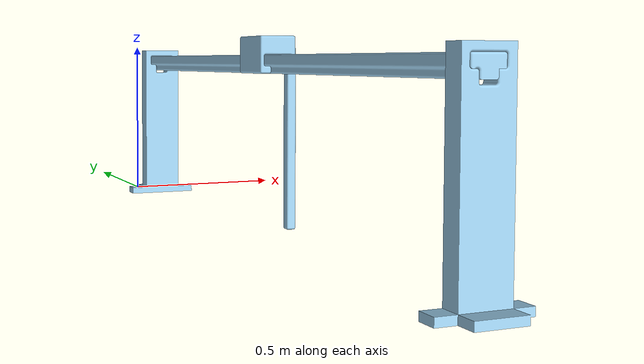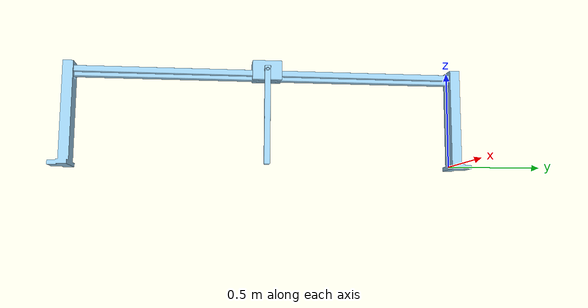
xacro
<?xml version="1.0"?>
<robot name="cart_pole" xmlns:xacro="http://wiki.ros.org/xacro">

<xacro:include filename="$(find cart_pole_description)/cart_pole/ros2_control.urdf.xacro"/>
<link name="support_pole">
<visual>
<origin xyz="0.085000000000000019984 0.025000000000000001388 -0.019999999999999990008" rpy="0 -0 0" />
<geometry>
<mesh filename="package://cart_pole_description/cart_pole/support_plaform_1.stl"/>
</geometry>
<material name="support_plaform_1_material">
<color rgba="0.61568627450980395466 0.81176470588235294379 0.92941176470588238168 1.0"/>
</material>
</visual>
<collision>
<origin xyz="0.085000000000000019984 0.025000000000000001388 -0.019999999999999990008" rpy="0 -0 0" />
<geometry>
<mesh filename="package://cart_pole_description/cart_pole/support_plaform_1.stl"/>
</geometry>
</collision>
<inertial>
<origin xyz="0.085000000000000019984 0.0019366224157371760613 0.20527754982977566844" rpy="0 0 0"/>
<mass value="8.3650792577619803581" />
<inertia ixx="0.18809404056513884251" ixy="0"  ixz="0" iyy="0.19768960892502629445" iyz="0.0034874963072423744229" izz="0.014632587595117504606" />
</inertial>
</link>

<link name="cart_pole">
<visual>
<origin xyz="0.0050000000000000009714 -0.049999999999999988898 0" rpy="-1.570796326794896558 -1.570796326794896558 0" />
<geometry>
<mesh filename="package://cart_pole_description/cart_pole/cart_pole_line.stl"/>
</geometry>
<material name="cart_pole_line_material">
<color rgba="0.61568627450980395466 0.81176470588235294379 0.92941176470588238168 1.0"/>
</material>
</visual>
<collision>
<origin xyz="0.0050000000000000009714 -0.049999999999999988898 0" rpy="-1.570796326794896558 -1.570796326794896558 0" />
<geometry>
<mesh filename="package://cart_pole_description/cart_pole/cart_pole_line.stl"/>
</geometry>
</collision>
<inertial>
<origin xyz="-0.99507213325206489429 -0.021216690244781032104 -3.5306212902930945573e-05" rpy="0 0 0"/>
<mass value="17.129471613392958318" />
<inertia ixx="0.010371517126750266768" ixy="-2.2571194222369972551e-05"  ixz="8.5176426230256071983e-06" iyy="5.7133527876254550648" iyz="-5.938288855520099704e-06" izz="5.7091229148612372413" />
</inertial>
</link>

<link name="support_plaform_1">
<visual>
<origin xyz="0.0049999999999998934186 -0.48999999999999999112 6.9388939039072283776e-17" rpy="-1.570796326794896558 -1.570796326794896558 0" />
<geometry>
<mesh filename="package://cart_pole_description/cart_pole/support_plaform_1.stl"/>
</geometry>
<material name="support_plaform_1_material">
<color rgba="0.61568627450980395466 0.81176470588235294379 0.92941176470588238168 1.0"/>
</material>
</visual>
<collision>
<origin xyz="0.0049999999999998934186 -0.48999999999999999112 6.9388939039072283776e-17" rpy="-1.570796326794896558 -1.570796326794896558 0" />
<geometry>
<mesh filename="package://cart_pole_description/cart_pole/support_plaform_1.stl"/>
</geometry>
</collision>
<inertial>
<origin xyz="-0.018063377584262931691 -0.26472245017022433267 6.5441072379336884681e-17" rpy="0 0 0"/>
<mass value="8.3650792577619803581" />
<inertia ixx="0.19768960892502629445" ixy="0.0034874963072423744229"  ixz="0" iyy="0.014632587595117504606" iyz="0" izz="0.18809404056513884251" />
</inertial>
</link>

<joint name="fastened 3" type="fixed">
<origin xyz="-1.9900000000000002132 0 -1.3877787807814456755e-17" rpy="3.141592653589793116 -0 3.141592653589793116" />
<parent link="cart_pole" />
<child link="support_plaform_1" />
<axis xyz="0 0 1"/>
<limit effort="1" velocity="20" />
<joint_properties friction="0.0"/>
</joint>

<link name="cart_move">
<visual>
<origin xyz="0.010000000000000008882 -0.025000000000000022204 -0.075000000000000066613" rpy="-1.570796326794896558 -1.570796326794896336 0" />
<geometry>
<mesh filename="package://cart_pole_description/cart_pole/cart_move.stl"/>
</geometry>
<material name="cart_move_material">
<color rgba="0.61568627450980395466 0.81176470588235294379 0.92941176470588238168 1.0"/>
</material>
</visual>
<collision>
<origin xyz="0.010000000000000008882 -0.025000000000000022204 -0.075000000000000066613" rpy="-1.570796326794896558 -1.570796326794896336 0" />
<geometry>
<mesh filename="package://cart_pole_description/cart_pole/cart_move.stl"/>
</geometry>
</collision>
<inertial>
<origin xyz="-0.039380514238607201849 0.03507424335133896981 -5.5511151231257827021e-17" rpy="0 0 0"/>
<mass value="2.7582989593438584919" />
<inertia ixx="0.0072884337806232426735" ixy="1.7214130923659983201e-05"  ixz="5.5457548773363819873e-21" iyy="0.007943139603199119228" iyz="9.1364122808394913014e-19" izz="0.0051071794741707502926" />
</inertial>
</link>

<link name="cart_swinger">
<visual>
<origin xyz="0 -0.47999999999999998224 -0.0050000000000000044409" rpy="-1.570796326794896558 -0 0" />
<geometry>
<mesh filename="package://cart_pole_description/cart_pole/cart_swinger.stl"/>
</geometry>
<material name="cart_swinger_material">
<color rgba="0.61568627450980395466 0.81176470588235294379 0.92941176470588238168 1.0"/>
</material>
</visual>
<collision>
<origin xyz="0 -0.47999999999999998224 -0.0050000000000000044409" rpy="-1.570796326794896558 -0 0" />
<geometry>
<mesh filename="package://cart_pole_description/cart_pole/cart_swinger.stl"/>
</geometry>
</collision>
<inertial>
<origin xyz="-2.157282115343227227e-17 -0.23320688038281839338 0.0074999999999999893141" rpy="0 0 0"/>
<mass value="0.96730709424135585817" />
<inertia ixx="0.019645015474623172408" ixy="0"  ixz="6.5797313948525898238e-12" iyy="0.00011766776891047566519" iyz="0" izz="0.019666908757294859073" />
</inertial>
</link>

<joint name="continuous_revolute_1" type="continuous">
<origin xyz="0.035000000000000003331 0.024999999999999966693 0" rpy="-0 -1.570796326794896336 0" />
<parent link="cart_move" />
<child link="cart_swinger" />
<axis xyz="0 0 1"/>
<limit effort="1" velocity="20" />
<joint_properties friction="0.0"/>

</joint>

<joint name="slider_1" type="prismatic">
<origin xyz="-0.99499999999999999556 -0.024999999999999966693 0.040000000000000035527" rpy="-0 -1.570796326794896558 0" />
<parent link="cart_pole" />
<child link="cart_move" />
<axis xyz="0 0 1"/>
<limit effort="1" velocity="20" lower="-0.8499999999999999778" upper="0.8499999999999999778"/>
<joint_properties friction="0.0"/>
</joint>

<joint name="fastened 2" type="fixed">
<origin xyz="0.084999999999999964473 0.019999999999999993477 0.46999999999999997335" rpy="1.570796326794896558 -0 1.570796326794896558" />
<parent link="support_pole" />
<child link="cart_pole" />
<axis xyz="0 0 1"/>
<limit effort="1" velocity="20" />
<joint_properties friction="0.0"/>
</joint>

</robot>
